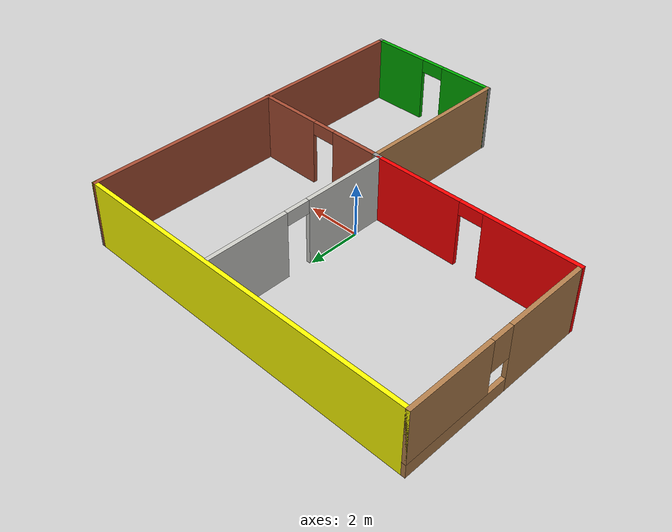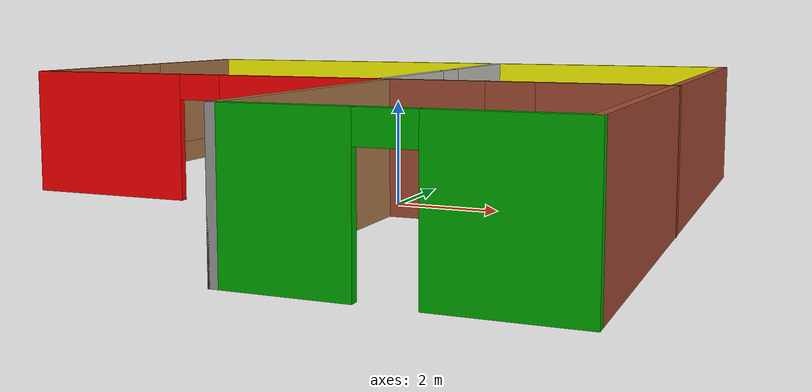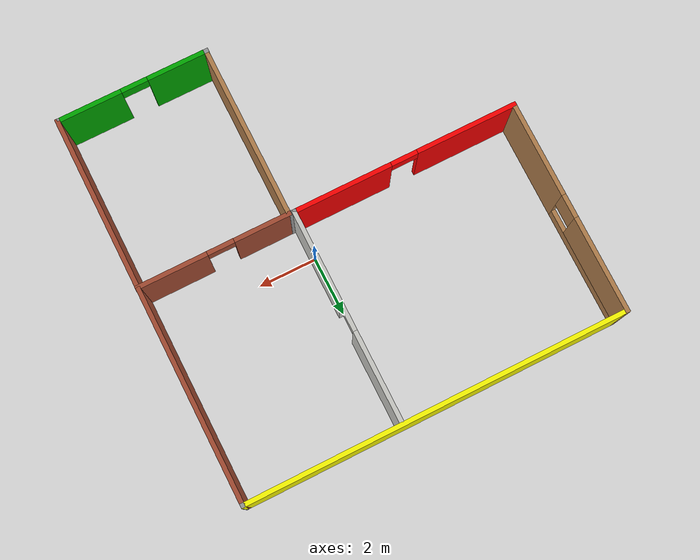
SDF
<?xml version='1.0'?>
<sdf version='1.6'>
  <model name='mybuild'>
    <pose frame=''>-1.06306 -0.460998 0 0 -0 0</pose>
    <link name='Wall_0'>
      <collision name='Wall_0_Collision'>
        <geometry>
          <box>
            <size>13 0.15 2.5</size>
          </box>
        </geometry>
        <pose frame=''>0 0 1.25 0 -0 0</pose>
      </collision>
      <visual name='Wall_0_Visual'>
        <pose frame=''>0 0 1.25 0 -0 0</pose>
        <geometry>
          <box>
            <size>13 0.15 2.5</size>
          </box>
        </geometry>
        <material>
          <script>
            <uri>file://media/materials/scripts/gazebo.material</uri>
            <name>Gazebo/Grey</name>
          </script>
          <ambient>1 1 0 1</ambient>
        </material>
      </visual>
      <pose frame=''>-0.007882 6.55 0 0 -0 0</pose>
    </link>
    <link name='Wall_1'>
      <collision name='Wall_1_Collision'>
        <geometry>
          <box>
            <size>0.16 0.15 2.5</size>
          </box>
        </geometry>
        <pose frame=''>0 0 1.25 0 -0 0</pose>
      </collision>
      <visual name='Wall_1_Visual'>
        <pose frame=''>0 0 1.25 0 -0 0</pose>
        <geometry>
          <box>
            <size>0.16 0.15 2.5</size>
          </box>
        </geometry>
        <material>
          <script>
            <uri>file://media/materials/scripts/gazebo.material</uri>
            <name>Gazebo/Grey</name>
          </script>
          <ambient>1 1 1 1</ambient>
        </material>
      </visual>
      <pose frame=''>6.42212 6.55 0 0 -0 0</pose>
    </link>
    <link name='Wall_10'>
      <pose frame=''>-6.43288 3 0 0 -0 1.5708</pose>
      <visual name='Wall_10_Visual_0'>
        <pose frame=''>-2.04395 0 1.25 0 -0 0</pose>
        <geometry>
          <box>
            <size>3.16209 0.15 2.5</size>
          </box>
        </geometry>
        <material>
          <script>
            <uri>file://media/materials/scripts/gazebo.material</uri>
            <name>Gazebo/Wood</name>
          </script>
          <ambient>1 1 1 1</ambient>
        </material>
      </visual>
      <collision name='Wall_10_Collision_0'>
        <geometry>
          <box>
            <size>3.16209 0.15 2.5</size>
          </box>
        </geometry>
        <pose frame=''>-2.04395 0 1.25 0 -0 0</pose>
      </collision>
      <visual name='Wall_10_Visual_1'>
        <pose frame=''>1.58105 0 0.25 0 -0 0</pose>
        <geometry>
          <box>
            <size>4.08791 0.15 0.5</size>
          </box>
        </geometry>
        <material>
          <script>
            <uri>file://media/materials/scripts/gazebo.material</uri>
            <name>Gazebo/Wood</name>
          </script>
          <ambient>1 1 1 1</ambient>
        </material>
      </visual>
      <collision name='Wall_10_Collision_1'>
        <geometry>
          <box>
            <size>4.08791 0.15 0.5</size>
          </box>
        </geometry>
        <pose frame=''>1.58105 0 0.25 0 -0 0</pose>
      </collision>
      <visual name='Wall_10_Visual_2'>
        <pose frame=''>1.98105 0 1.5 0 -0 0</pose>
        <geometry>
          <box>
            <size>3.2879 0.15 2</size>
          </box>
        </geometry>
        <material>
          <script>
            <uri>file://media/materials/scripts/gazebo.material</uri>
            <name>Gazebo/Wood</name>
          </script>
          <ambient>1 1 1 1</ambient>
        </material>
      </visual>
      <collision name='Wall_10_Collision_2'>
        <geometry>
          <box>
            <size>3.2879 0.15 2</size>
          </box>
        </geometry>
        <pose frame=''>1.98105 0 1.5 0 -0 0</pose>
      </collision>
      <visual name='Wall_10_Visual_3'>
        <pose frame=''>-0.062905 0 1.9 0 -0 0</pose>
        <geometry>
          <box>
            <size>0.8 0.15 1.2</size>
          </box>
        </geometry>
        <material>
          <script>
            <uri>file://media/materials/scripts/gazebo.material</uri>
            <name>Gazebo/Wood</name>
          </script>
          <ambient>1 1 1 1</ambient>
        </material>
      </visual>
      <collision name='Wall_10_Collision_3'>
        <geometry>
          <box>
            <size>0.8 0.15 1.2</size>
          </box>
        </geometry>
        <pose frame=''>-0.062905 0 1.9 0 -0 0</pose>
      </collision>
    </link>
    <link name='Wall_13'>
      <pose frame=''>1.16288 2.86293 0 0 -0 1.5708</pose>
      <visual name='Wall_13_Visual_0'>
        <pose frame=''>-1.98293 0 1.25 0 -0 0</pose>
        <geometry>
          <box>
            <size>3.28415 0.15 2.5</size>
          </box>
        </geometry>
        <material>
          <script>
            <uri>file://media/materials/scripts/gazebo.material</uri>
            <name>Gazebo/CeilingTiled</name>
          </script>
          <ambient>1 1 1 1</ambient>
        </material>
      </visual>
      <collision name='Wall_13_Collision_0'>
        <geometry>
          <box>
            <size>3.28415 0.15 2.5</size>
          </box>
        </geometry>
        <pose frame=''>-1.98293 0 1.25 0 -0 0</pose>
      </collision>
      <visual name='Wall_13_Visual_1'>
        <pose frame=''>2.09207 0 1.25 0 -0 0</pose>
        <geometry>
          <box>
            <size>3.06585 0.15 2.5</size>
          </box>
        </geometry>
        <material>
          <script>
            <uri>file://media/materials/scripts/gazebo.material</uri>
            <name>Gazebo/CeilingTiled</name>
          </script>
          <ambient>1 1 1 1</ambient>
        </material>
      </visual>
      <collision name='Wall_13_Collision_1'>
        <geometry>
          <box>
            <size>3.06585 0.15 2.5</size>
          </box>
        </geometry>
        <pose frame=''>2.09207 0 1.25 0 -0 0</pose>
      </collision>
      <visual name='Wall_13_Visual_2'>
        <pose frame=''>0.109146 0 2.25 0 -0 0</pose>
        <geometry>
          <box>
            <size>0.9 0.15 0.5</size>
          </box>
        </geometry>
        <material>
          <script>
            <uri>file://media/materials/scripts/gazebo.material</uri>
            <name>Gazebo/CeilingTiled</name>
          </script>
          <ambient>1 1 1 1</ambient>
        </material>
      </visual>
      <collision name='Wall_13_Collision_2'>
        <geometry>
          <box>
            <size>0.9 0.15 0.5</size>
          </box>
        </geometry>
        <pose frame=''>0.109146 0 2.25 0 -0 0</pose>
      </collision>
    </link>
    <link name='Wall_15'>
      <pose frame=''>3.88712 -0.7 0 0 -0 0</pose>
      <visual name='Wall_15_Visual_0'>
        <pose frame=''>-1.65493 0 1.25 0 -0 0</pose>
        <geometry>
          <box>
            <size>1.94015 0.15 2.5</size>
          </box>
        </geometry>
        <material>
          <script>
            <uri>file://media/materials/scripts/gazebo.material</uri>
            <name>Gazebo/Bricks</name>
          </script>
          <ambient>1 1 1 1</ambient>
        </material>
      </visual>
      <collision name='Wall_15_Collision_0'>
        <geometry>
          <box>
            <size>1.94015 0.15 2.5</size>
          </box>
        </geometry>
        <pose frame=''>-1.65493 0 1.25 0 -0 0</pose>
      </collision>
      <visual name='Wall_15_Visual_1'>
        <pose frame=''>1.42007 0 1.25 0 -0 0</pose>
        <geometry>
          <box>
            <size>2.40985 0.15 2.5</size>
          </box>
        </geometry>
        <material>
          <script>
            <uri>file://media/materials/scripts/gazebo.material</uri>
            <name>Gazebo/Bricks</name>
          </script>
          <ambient>1 1 1 1</ambient>
        </material>
      </visual>
      <collision name='Wall_15_Collision_1'>
        <geometry>
          <box>
            <size>2.40985 0.15 2.5</size>
          </box>
        </geometry>
        <pose frame=''>1.42007 0 1.25 0 -0 0</pose>
      </collision>
      <visual name='Wall_15_Visual_2'>
        <pose frame=''>-0.234852 0 2.25 0 -0 0</pose>
        <geometry>
          <box>
            <size>0.9 0.15 0.5</size>
          </box>
        </geometry>
        <material>
          <script>
            <uri>file://media/materials/scripts/gazebo.material</uri>
            <name>Gazebo/Bricks</name>
          </script>
          <ambient>1 1 1 1</ambient>
        </material>
      </visual>
      <collision name='Wall_15_Collision_2'>
        <geometry>
          <box>
            <size>0.9 0.15 0.5</size>
          </box>
        </geometry>
        <pose frame=''>-0.234852 0 2.25 0 -0 0</pose>
      </collision>
    </link>
    <link name='Wall_2'>
      <collision name='Wall_2_Collision'>
        <geometry>
          <box>
            <size>13.25 0.15 2.5</size>
          </box>
        </geometry>
        <pose frame=''>0 0 1.25 0 -0 0</pose>
      </collision>
      <visual name='Wall_2_Visual'>
        <pose frame=''>0 0 1.25 0 -0 0</pose>
        <geometry>
          <box>
            <size>13.25 0.15 2.5</size>
          </box>
        </geometry>
        <material>
          <script>
            <uri>file://media/materials/scripts/gazebo.material</uri>
            <name>Gazebo/Bricks</name>
          </script>
          <ambient>1 1 1 1</ambient>
        </material>
      </visual>
      <pose frame=''>6.42712 0 0 0 0 -1.5708</pose>
    </link>
    <link name='Wall_3'>
      <collision name='Wall_3_Collision'>
        <geometry>
          <box>
            <size>0.15 0.15 2.5</size>
          </box>
        </geometry>
        <pose frame=''>0 0 1.25 0 -0 0</pose>
      </collision>
      <visual name='Wall_3_Visual'>
        <pose frame=''>0 0 1.25 0 -0 0</pose>
        <geometry>
          <box>
            <size>0.15 0.15 2.5</size>
          </box>
        </geometry>
        <material>
          <script>
            <uri>file://media/materials/scripts/gazebo.material</uri>
            <name>Gazebo/Grey</name>
          </script>
          <ambient>1 1 1 1</ambient>
        </material>
      </visual>
      <pose frame=''>6.42712 -6.55 0 0 -0 0</pose>
    </link>
    <link name='Wall_4'>
      <pose frame=''>3.87712 -6.55 0 0 -0 3.14159</pose>
      <visual name='Wall_4_Visual_0'>
        <pose frame=''>-1.50636 0 1.25 0 -0 0</pose>
        <geometry>
          <box>
            <size>2.23729 0.15 2.5</size>
          </box>
        </geometry>
        <material>
          <script>
            <uri>file://media/materials/scripts/gazebo.material</uri>
            <name>Gazebo/Grey</name>
          </script>
          <ambient>0 0.666667 0 1</ambient>
        </material>
      </visual>
      <collision name='Wall_4_Collision_0'>
        <geometry>
          <box>
            <size>2.23729 0.15 2.5</size>
          </box>
        </geometry>
        <pose frame=''>-1.50636 0 1.25 0 -0 0</pose>
      </collision>
      <visual name='Wall_4_Visual_1'>
        <pose frame=''>1.56864 0 1.25 0 -0 0</pose>
        <geometry>
          <box>
            <size>2.11271 0.15 2.5</size>
          </box>
        </geometry>
        <material>
          <script>
            <uri>file://media/materials/scripts/gazebo.material</uri>
            <name>Gazebo/Grey</name>
          </script>
          <ambient>0 0.666667 0 1</ambient>
        </material>
      </visual>
      <collision name='Wall_4_Collision_1'>
        <geometry>
          <box>
            <size>2.11271 0.15 2.5</size>
          </box>
        </geometry>
        <pose frame=''>1.56864 0 1.25 0 -0 0</pose>
      </collision>
      <visual name='Wall_4_Visual_2'>
        <pose frame=''>0.062288 0 2.25 0 -0 0</pose>
        <geometry>
          <box>
            <size>0.9 0.15 0.5</size>
          </box>
        </geometry>
        <material>
          <script>
            <uri>file://media/materials/scripts/gazebo.material</uri>
            <name>Gazebo/Grey</name>
          </script>
          <ambient>0 0.666667 0 1</ambient>
        </material>
      </visual>
      <collision name='Wall_4_Collision_2'>
        <geometry>
          <box>
            <size>0.9 0.15 0.5</size>
          </box>
        </geometry>
        <pose frame=''>0.062288 0 2.25 0 -0 0</pose>
      </collision>
    </link>
    <link name='Wall_5'>
      <collision name='Wall_5_Collision'>
        <geometry>
          <box>
            <size>0.16 0.15 2.5</size>
          </box>
        </geometry>
        <pose frame=''>0 0 1.25 0 -0 0</pose>
      </collision>
      <visual name='Wall_5_Visual'>
        <pose frame=''>0 0 1.25 0 -0 0</pose>
        <geometry>
          <box>
            <size>0.16 0.15 2.5</size>
          </box>
        </geometry>
        <material>
          <script>
            <uri>file://media/materials/scripts/gazebo.material</uri>
            <name>Gazebo/Grey</name>
          </script>
          <ambient>1 1 1 1</ambient>
        </material>
      </visual>
      <pose frame=''>1.33212 -6.55 0 0 -0 0</pose>
    </link>
    <link name='Wall_6'>
      <collision name='Wall_6_Collision'>
        <geometry>
          <box>
            <size>6 0.15 2.5</size>
          </box>
        </geometry>
        <pose frame=''>0 0 1.25 0 -0 0</pose>
      </collision>
      <visual name='Wall_6_Visual'>
        <pose frame=''>0 0 1.25 0 -0 0</pose>
        <geometry>
          <box>
            <size>6 0.15 2.5</size>
          </box>
        </geometry>
        <material>
          <script>
            <uri>file://media/materials/scripts/gazebo.material</uri>
            <name>Gazebo/Wood</name>
          </script>
          <ambient>1 1 1 1</ambient>
        </material>
      </visual>
      <pose frame=''>1.33712 -3.625 0 0 -0 1.5708</pose>
    </link>
    <link name='Wall_7'>
      <collision name='Wall_7_Collision'>
        <geometry>
          <box>
            <size>0.326326 0.15 2.5</size>
          </box>
        </geometry>
        <pose frame=''>0 0 1.25 0 -0 0</pose>
      </collision>
      <visual name='Wall_7_Visual'>
        <pose frame=''>0 0 1.25 0 -0 0</pose>
        <geometry>
          <box>
            <size>0.326326 0.15 2.5</size>
          </box>
        </geometry>
        <material>
          <script>
            <uri>file://media/materials/scripts/gazebo.material</uri>
            <name>Gazebo/Grey</name>
          </script>
          <ambient>1 1 1 1</ambient>
        </material>
      </visual>
      <pose frame=''>1.24919 -0.693535 0 0 -0 3.0682</pose>
    </link>
    <link name='Wall_8'>
      <pose frame=''>-2.63712 -0.687071 0 0 -0 3.14159</pose>
      <visual name='Wall_8_Visual_0'>
        <pose frame=''>-2.17647 0 1.25 0 -0 0</pose>
        <geometry>
          <box>
            <size>3.39706 0.15 2.5</size>
          </box>
        </geometry>
        <material>
          <script>
            <uri>file://media/materials/scripts/gazebo.material</uri>
            <name>Gazebo/Grey</name>
          </script>
          <ambient>1 0 0 1</ambient>
        </material>
      </visual>
      <collision name='Wall_8_Collision_0'>
        <geometry>
          <box>
            <size>3.39706 0.15 2.5</size>
          </box>
        </geometry>
        <pose frame=''>-2.17647 0 1.25 0 -0 0</pose>
      </collision>
      <visual name='Wall_8_Visual_1'>
        <pose frame=''>2.14853 0 1.25 0 -0 0</pose>
        <geometry>
          <box>
            <size>3.45294 0.15 2.5</size>
          </box>
        </geometry>
        <material>
          <script>
            <uri>file://media/materials/scripts/gazebo.material</uri>
            <name>Gazebo/Grey</name>
          </script>
          <ambient>1 0 0 1</ambient>
        </material>
      </visual>
      <collision name='Wall_8_Collision_1'>
        <geometry>
          <box>
            <size>3.45294 0.15 2.5</size>
          </box>
        </geometry>
        <pose frame=''>2.14853 0 1.25 0 -0 0</pose>
      </collision>
      <visual name='Wall_8_Visual_2'>
        <pose frame=''>-0.027942 0 2.25 0 -0 0</pose>
        <geometry>
          <box>
            <size>0.9 0.15 0.5</size>
          </box>
        </geometry>
        <material>
          <script>
            <uri>file://media/materials/scripts/gazebo.material</uri>
            <name>Gazebo/Grey</name>
          </script>
          <ambient>1 0 0 1</ambient>
        </material>
      </visual>
      <collision name='Wall_8_Collision_2'>
        <geometry>
          <box>
            <size>0.9 0.15 0.5</size>
          </box>
        </geometry>
        <pose frame=''>-0.027942 0 2.25 0 -0 0</pose>
      </collision>
    </link>
    <static>1</static>
  </model>
</sdf>
